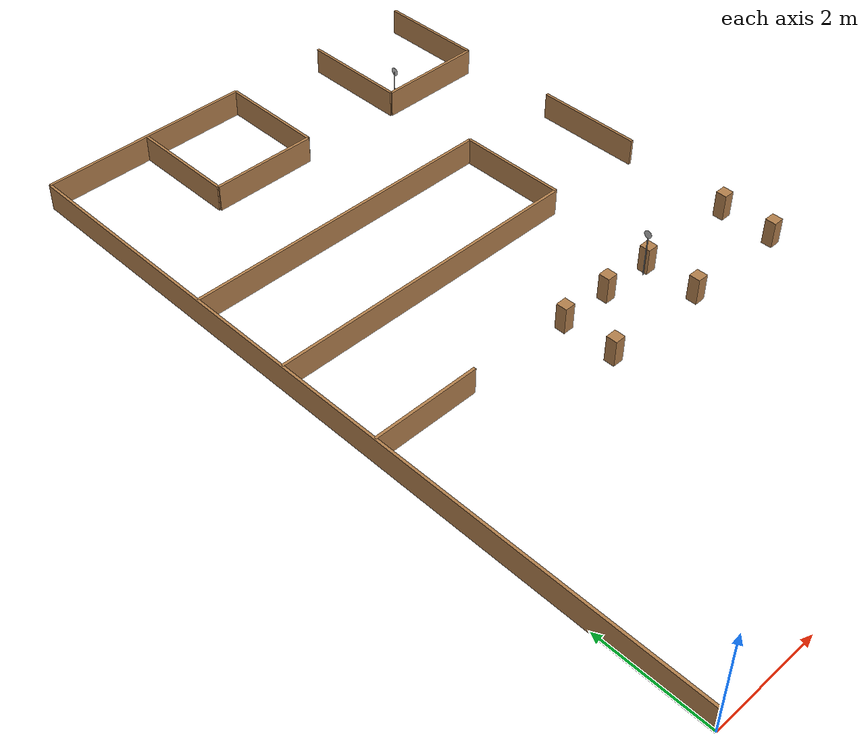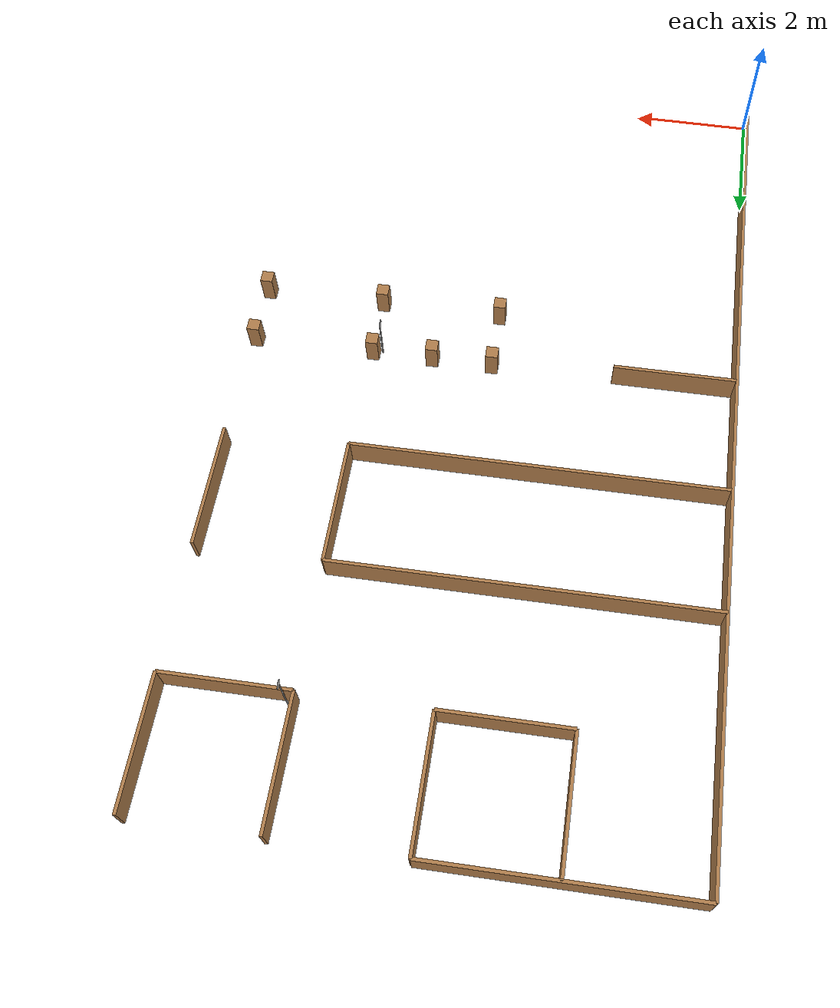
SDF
<sdf version="1.6">
 <world name="default">
  <model name="box_60">
   <pose>8.0 5.0 0.25 0 0 0</pose>
   <link name="link">
    <inertial>
     <mass>1</mass>
     <inertia><ixx>0</ixx><ixy>0</ixy><ixz>0</ixz><iyy>0</iyy><iyz>0</iyz><izz>0</izz></inertia>
    </inertial>
    <collision name="collision"><geometry><box><size>0.2 0.2 0.5</size></box></geometry></collision>
    <visual name="visual">
     <geometry><box><size>0.2 0.2 0.5</size></box></geometry>
     <material>
      <script><name>Gazebo/WoodPallet</name><uri>file://media/materials/scripts/gazebo.material</uri></script>
     </material>
    </visual>
   </link>
   <static>1</static>
  </model>
  <model name="box_57">
   <pose>8.0 6.0 0.25 0 0 0</pose>
   <link name="link">
    <inertial>
     <mass>1</mass>
     <inertia><ixx>0</ixx><ixy>0</ixy><ixz>0</ixz><iyy>0</iyy><iyz>0</iyz><izz>0</izz></inertia>
    </inertial>
    <collision name="collision"><geometry><box><size>0.2 0.2 0.5</size></box></geometry></collision>
    <visual name="visual">
     <geometry><box><size>0.2 0.2 0.5</size></box></geometry>
     <material>
      <script><name>Gazebo/WoodPallet</name><uri>file://media/materials/scripts/gazebo.material</uri></script>
     </material>
    </visual>
   </link>
   <static>1</static>
  </model>
  <model name="box_45">
   <pose>6.0 5.0 0.25 0 0 0</pose>
   <link name="link">
    <inertial>
     <mass>1</mass>
     <inertia><ixx>0</ixx><ixy>0</ixy><ixz>0</ixz><iyy>0</iyy><iyz>0</iyz><izz>0</izz></inertia>
    </inertial>
    <collision name="collision"><geometry><box><size>0.2 0.2 0.5</size></box></geometry></collision>
    <visual name="visual">
     <geometry><box><size>0.2 0.2 0.5</size></box></geometry>
     <material>
      <script><name>Gazebo/WoodPallet</name><uri>file://media/materials/scripts/gazebo.material</uri></script>
     </material>
    </visual>
   </link>
   <static>1</static>
  </model>
  <model name="box_44">
   <pose>4.0 5.0 0.25 0 0 0</pose>
   <link name="link">
    <inertial>
     <mass>1</mass>
     <inertia><ixx>0</ixx><ixy>0</ixy><ixz>0</ixz><iyy>0</iyy><iyz>0</iyz><izz>0</izz></inertia>
    </inertial>
    <collision name="collision"><geometry><box><size>0.2 0.2 0.5</size></box></geometry></collision>
    <visual name="visual">
     <geometry><box><size>0.2 0.2 0.5</size></box></geometry>
     <material>
      <script><name>Gazebo/WoodPallet</name><uri>file://media/materials/scripts/gazebo.material</uri></script>
     </material>
    </visual>
   </link>
   <static>1</static>
  </model>
  <model name="box_43">
   <pose>6.0 6.0 0.25 0 0 0</pose>
   <link name="link">
    <inertial>
     <mass>1</mass>
     <inertia><ixx>0</ixx><ixy>0</ixy><ixz>0</ixz><iyy>0</iyy><iyz>0</iyz><izz>0</izz></inertia>
    </inertial>
    <collision name="collision"><geometry><box><size>0.2 0.2 0.5</size></box></geometry></collision>
    <visual name="visual">
     <geometry><box><size>0.2 0.2 0.5</size></box></geometry>
     <material>
      <script><name>Gazebo/WoodPallet</name><uri>file://media/materials/scripts/gazebo.material</uri></script>
     </material>
    </visual>
   </link>
   <static>1</static>
  </model>
  <model name="box_42">
   <pose>5.0 6.0 0.25 0 0 0</pose>
   <link name="link">
    <inertial>
     <mass>1</mass>
     <inertia><ixx>0</ixx><ixy>0</ixy><ixz>0</ixz><iyy>0</iyy><iyz>0</iyz><izz>0</izz></inertia>
    </inertial>
    <collision name="collision"><geometry><box><size>0.2 0.2 0.5</size></box></geometry></collision>
    <visual name="visual">
     <geometry><box><size>0.2 0.2 0.5</size></box></geometry>
     <material>
      <script><name>Gazebo/WoodPallet</name><uri>file://media/materials/scripts/gazebo.material</uri></script>
     </material>
    </visual>
   </link>
   <static>1</static>
  </model>
  <model name="box_41">
   <pose>4.0 6.0 0.25 0 0 0</pose>
   <link name="link">
    <inertial>
     <mass>1</mass>
     <inertia><ixx>0</ixx><ixy>0</ixy><ixz>0</ixz><iyy>0</iyy><iyz>0</iyz><izz>0</izz></inertia>
    </inertial>
    <collision name="collision"><geometry><box><size>0.2 0.2 0.5</size></box></geometry></collision>
    <visual name="visual">
     <geometry><box><size>0.2 0.2 0.5</size></box></geometry>
     <material>
      <script><name>Gazebo/WoodPallet</name><uri>file://media/materials/scripts/gazebo.material</uri></script>
     </material>
    </visual>
   </link>
   <static>1</static>
  </model>
  <include>
   <uri>model://forward-sign</uri>
   <name>sign_6</name>
   <pose>5.86 5.9399999999999995 0 0 0 4.71238898038469</pose>
  </include>
  <include>
   <uri>model://forward-right-sign</uri>
   <name>sign_4</name>
   <pose>6.14 12.06 0 0 0 1.5707963267948966</pose>
  </include>
  <model name="box_37">
   <pose>8.0 13.0 0.25 0 0 -1.5707963267948966</pose>
   <link name="link">
    <inertial>
     <mass>1</mass>
     <inertia><ixx>0</ixx><ixy>0</ixy><ixz>0</ixz><iyy>0</iyy><iyz>0</iyz><izz>0</izz></inertia>
    </inertial>
    <collision name="collision"><geometry><box><size>2.0 0.05 0.5</size></box></geometry></collision>
    <visual name="visual">
     <geometry><box><size>2.0 0.05 0.5</size></box></geometry>
     <material>
      <script><name>Gazebo/WoodPallet</name><uri>file://media/materials/scripts/gazebo.material</uri></script>
     </material>
    </visual>
   </link>
   <static>1</static>
  </model>
  <model name="box_36">
   <pose>7.0 12.0 0.25 0 0 -3.141592653589793</pose>
   <link name="link">
    <inertial>
     <mass>1</mass>
     <inertia><ixx>0</ixx><ixy>0</ixy><ixz>0</ixz><iyy>0</iyy><iyz>0</iyz><izz>0</izz></inertia>
    </inertial>
    <collision name="collision"><geometry><box><size>2.0 0.05 0.5</size></box></geometry></collision>
    <visual name="visual">
     <geometry><box><size>2.0 0.05 0.5</size></box></geometry>
     <material>
      <script><name>Gazebo/WoodPallet</name><uri>file://media/materials/scripts/gazebo.material</uri></script>
     </material>
    </visual>
   </link>
   <static>1</static>
  </model>
  <model name="box_35">
   <pose>6.0 13.0 0.25 0 0 1.5707963267948966</pose>
   <link name="link">
    <inertial>
     <mass>1</mass>
     <inertia><ixx>0</ixx><ixy>0</ixy><ixz>0</ixz><iyy>0</iyy><iyz>0</iyz><izz>0</izz></inertia>
    </inertial>
    <collision name="collision"><geometry><box><size>2.0 0.05 0.5</size></box></geometry></collision>
    <visual name="visual">
     <geometry><box><size>2.0 0.05 0.5</size></box></geometry>
     <material>
      <script><name>Gazebo/WoodPallet</name><uri>file://media/materials/scripts/gazebo.material</uri></script>
     </material>
    </visual>
   </link>
   <static>1</static>
  </model>
  <model name="box_34">
   <pose>2.0 13.0 0.25 0 0 -1.5707963267948966</pose>
   <link name="link">
    <inertial>
     <mass>1</mass>
     <inertia><ixx>0</ixx><ixy>0</ixy><ixz>0</ixz><iyy>0</iyy><iyz>0</iyz><izz>0</izz></inertia>
    </inertial>
    <collision name="collision"><geometry><box><size>2.0 0.05 0.5</size></box></geometry></collision>
    <visual name="visual">
     <geometry><box><size>2.0 0.05 0.5</size></box></geometry>
     <material>
      <script><name>Gazebo/WoodPallet</name><uri>file://media/materials/scripts/gazebo.material</uri></script>
     </material>
    </visual>
   </link>
   <static>1</static>
  </model>
  <model name="box_33">
   <pose>3.0 12.0 0.25 0 0 -0.0</pose>
   <link name="link">
    <inertial>
     <mass>1</mass>
     <inertia><ixx>0</ixx><ixy>0</ixy><ixz>0</ixz><iyy>0</iyy><iyz>0</iyz><izz>0</izz></inertia>
    </inertial>
    <collision name="collision"><geometry><box><size>2.0 0.05 0.5</size></box></geometry></collision>
    <visual name="visual">
     <geometry><box><size>2.0 0.05 0.5</size></box></geometry>
     <material>
      <script><name>Gazebo/WoodPallet</name><uri>file://media/materials/scripts/gazebo.material</uri></script>
     </material>
    </visual>
   </link>
   <static>1</static>
  </model>
  <model name="box_32">
   <pose>4.0 13.0 0.25 0 0 1.5707963267948966</pose>
   <link name="link">
    <inertial>
     <mass>1</mass>
     <inertia><ixx>0</ixx><ixy>0</ixy><ixz>0</ixz><iyy>0</iyy><iyz>0</iyz><izz>0</izz></inertia>
    </inertial>
    <collision name="collision"><geometry><box><size>2.0 0.05 0.5</size></box></geometry></collision>
    <visual name="visual">
     <geometry><box><size>2.0 0.05 0.5</size></box></geometry>
     <material>
      <script><name>Gazebo/WoodPallet</name><uri>file://media/materials/scripts/gazebo.material</uri></script>
     </material>
    </visual>
   </link>
   <static>1</static>
  </model>
  <model name="box_29">
   <pose>1.0 6.0 0.25 0 0 -3.141592653589793</pose>
   <link name="link">
    <inertial>
     <mass>1</mass>
     <inertia><ixx>0</ixx><ixy>0</ixy><ixz>0</ixz><iyy>0</iyy><iyz>0</iyz><izz>0</izz></inertia>
    </inertial>
    <collision name="collision"><geometry><box><size>2.0 0.05 0.5</size></box></geometry></collision>
    <visual name="visual">
     <geometry><box><size>2.0 0.05 0.5</size></box></geometry>
     <material>
      <script><name>Gazebo/WoodPallet</name><uri>file://media/materials/scripts/gazebo.material</uri></script>
     </material>
    </visual>
   </link>
   <static>1</static>
  </model>
  <model name="box_28">
   <pose>3.0 10.0 0.25 0 0 -0.0</pose>
   <link name="link">
    <inertial>
     <mass>1</mass>
     <inertia><ixx>0</ixx><ixy>0</ixy><ixz>0</ixz><iyy>0</iyy><iyz>0</iyz><izz>0</izz></inertia>
    </inertial>
    <collision name="collision"><geometry><box><size>6.0 0.05 0.5</size></box></geometry></collision>
    <visual name="visual">
     <geometry><box><size>6.0 0.05 0.5</size></box></geometry>
     <material>
      <script><name>Gazebo/WoodPallet</name><uri>file://media/materials/scripts/gazebo.material</uri></script>
     </material>
    </visual>
   </link>
   <static>1</static>
  </model>
  <model name="box_27">
   <pose>6.0 9.0 0.25 0 0 -1.5707963267948966</pose>
   <link name="link">
    <inertial>
     <mass>1</mass>
     <inertia><ixx>0</ixx><ixy>0</ixy><ixz>0</ixz><iyy>0</iyy><iyz>0</iyz><izz>0</izz></inertia>
    </inertial>
    <collision name="collision"><geometry><box><size>2.0 0.05 0.5</size></box></geometry></collision>
    <visual name="visual">
     <geometry><box><size>2.0 0.05 0.5</size></box></geometry>
     <material>
      <script><name>Gazebo/WoodPallet</name><uri>file://media/materials/scripts/gazebo.material</uri></script>
     </material>
    </visual>
   </link>
   <static>1</static>
  </model>
  <model name="box_26">
   <pose>3.0 8.0 0.25 0 0 -3.141592653589793</pose>
   <link name="link">
    <inertial>
     <mass>1</mass>
     <inertia><ixx>0</ixx><ixy>0</ixy><ixz>0</ixz><iyy>0</iyy><iyz>0</iyz><izz>0</izz></inertia>
    </inertial>
    <collision name="collision"><geometry><box><size>6.0 0.05 0.5</size></box></geometry></collision>
    <visual name="visual">
     <geometry><box><size>6.0 0.05 0.5</size></box></geometry>
     <material>
      <script><name>Gazebo/WoodPallet</name><uri>file://media/materials/scripts/gazebo.material</uri></script>
     </material>
    </visual>
   </link>
   <static>1</static>
  </model>
  <model name="box_24">
   <pose>8.0 9.0 0.25 0 0 -1.5707963267948966</pose>
   <link name="link">
    <inertial>
     <mass>1</mass>
     <inertia><ixx>0</ixx><ixy>0</ixy><ixz>0</ixz><iyy>0</iyy><iyz>0</iyz><izz>0</izz></inertia>
    </inertial>
    <collision name="collision"><geometry><box><size>2.0 0.05 0.5</size></box></geometry></collision>
    <visual name="visual">
     <geometry><box><size>2.0 0.05 0.5</size></box></geometry>
     <material>
      <script><name>Gazebo/WoodPallet</name><uri>file://media/materials/scripts/gazebo.material</uri></script>
     </material>
    </visual>
   </link>
   <static>1</static>
  </model>
  <model name="box_2">
   <pose>0.0 7.0 0.25 0 0 1.5707963267948966</pose>
   <link name="link">
    <inertial>
     <mass>1</mass>
     <inertia><ixx>0</ixx><ixy>0</ixy><ixz>0</ixz><iyy>0</iyy><iyz>0</iyz><izz>0</izz></inertia>
    </inertial>
    <collision name="collision"><geometry><box><size>14.0 0.05 0.5</size></box></geometry></collision>
    <visual name="visual">
     <geometry><box><size>14.0 0.05 0.5</size></box></geometry>
     <material>
      <script><name>Gazebo/WoodPallet</name><uri>file://media/materials/scripts/gazebo.material</uri></script>
     </material>
    </visual>
   </link>
   <static>1</static>
  </model>
  <model name="box_1">
   <pose>2.0 14.0 0.25 0 0 -0.0</pose>
   <link name="link">
    <inertial>
     <mass>1</mass>
     <inertia><ixx>0</ixx><ixy>0</ixy><ixz>0</ixz><iyy>0</iyy><iyz>0</iyz><izz>0</izz></inertia>
    </inertial>
    <collision name="collision"><geometry><box><size>4.0 0.05 0.5</size></box></geometry></collision>
    <visual name="visual">
     <geometry><box><size>4.0 0.05 0.5</size></box></geometry>
     <material>
      <script><name>Gazebo/WoodPallet</name><uri>file://media/materials/scripts/gazebo.material</uri></script>
     </material>
    </visual>
   </link>
   <static>1</static>
  </model>
 </world>
</sdf>
